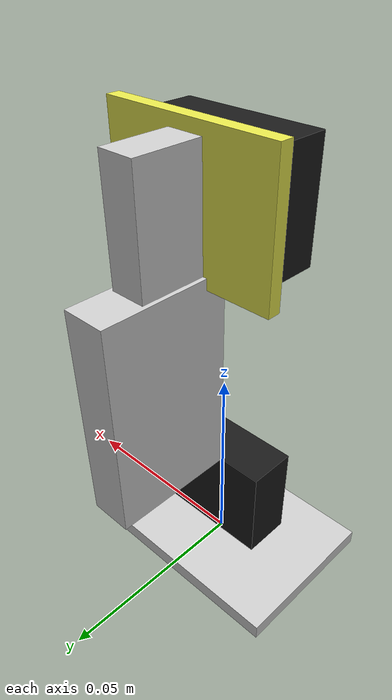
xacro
<?xml version="1.0"?>
<robot name="head_tracker_gimbal" xmlns:xacro="http://ros.org/wiki/xacro">

  <!-- ===== Basic dimensions (meters) ===== -->
  <xacro:property name="base_len"  value="0.060"/>   <!-- 6 cm -->
  <xacro:property name="base_wid"  value="0.040"/>   <!-- 4 cm -->
  <xacro:property name="base_thk"  value="0.004"/>   <!-- 4 mm -->

  <xacro:property name="servo_x"   value="0.032"/>
  <xacro:property name="servo_y"   value="0.012"/>
  <xacro:property name="servo_z"   value="0.025"/>

  <xacro:property name="col_x"     value="0.010"/>
  <xacro:property name="col_y"     value="0.030"/>
  <xacro:property name="col_z"     value="0.050"/>

  <xacro:property name="pservo_x"  value="${servo_x}"/>
  <xacro:property name="pservo_y"  value="${servo_y}"/>
  <xacro:property name="pservo_z"  value="${servo_z}"/>

  <!-- plate_x = width, plate_y = height, plate_z = thickness -->
  <xacro:property name="plate_x"   value="0.040"/>   <!-- 4 cm width -->
  <xacro:property name="plate_y"   value="0.030"/>   <!-- 3 cm height -->
  <xacro:property name="plate_z"   value="0.003"/>   <!-- 3 mm thick -->

  <!-- inertia helper -->
  <xacro:macro name="box_inertial" params="mass x y z">
    <inertial>
      <mass value="${mass}"/>
      <origin xyz="0 0 0" rpy="0 0 0"/>
      <inertia
        ixx="${mass*(y*y + z*z)/12.0}"
        iyy="${mass*(x*x + z*z)/12.0}"
        izz="${mass*(x*x + y*y)/12.0}"
        ixy="0.0" ixz="0.0" iyz="0.0"/>
    </inertial>
  </xacro:macro>

  <!-- materials -->
  <material name="aluminium_grey">
    <color rgba="0.8 0.8 0.8 1.0"/>
  </material>

  <material name="servo_black">
    <color rgba="0.1 0.1 0.1 1.0"/>
  </material>

  <material name="cam_yellow">
    <color rgba="0.9 0.9 0.3 1.0"/>
  </material>

  <!-- ========== LINKS ========== -->

  <!-- base -->
  <link name="base_link">
    <visual>
      <origin xyz="0 0 ${base_thk/2.0}" rpy="0 0 0"/>
      <geometry>
        <box size="${base_len} ${base_wid} ${base_thk}"/>
      </geometry>
      <material name="aluminium_grey"/>
    </visual>
    <collision>
      <origin xyz="0 0 ${base_thk/2.0}" rpy="0 0 0"/>
      <geometry>
        <box size="${base_len} ${base_wid} ${base_thk}"/>
      </geometry>
    </collision>
    <xacro:box_inertial mass="0.05" x="${base_len}" y="${base_wid}" z="${base_thk}"/>
  </link>

  <!-- yaw link (bottom servo + column) -->
  <link name="yaw_link">
    <visual>
      <origin xyz="0 0 ${servo_z/2.0 + base_thk}" rpy="0 0 0"/>
      <geometry>
        <box size="${servo_x} ${servo_y} ${servo_z}"/>
      </geometry>
      <material name="servo_black"/>
    </visual>

    <visual>
      <origin xyz="0 ${col_y/2.0 + servo_y/2.0} ${base_thk + servo_z + col_z/2.0}" rpy="0 0 0"/>
      <geometry>
        <box size="${col_x} ${col_y} ${col_z}"/>
      </geometry>
      <material name="aluminium_grey"/>
    </visual>

    <collision>
      <origin xyz="0 0 ${servo_z/2.0 + base_thk}" rpy="0 0 0"/>
      <geometry>
        <box size="${servo_x} ${servo_y} ${servo_z}"/>
      </geometry>
    </collision>
    <xacro:box_inertial mass="0.03" x="${servo_x}" y="${servo_y}" z="${servo_z}"/>
  </link>

  <!-- pitch link (upper servo + side bracket, above joint) -->
  <link name="pitch_link">
    <visual>
      <origin xyz="0 0 ${pservo_z/2.0}" rpy="0 0 0"/>
      <geometry>
        <box size="${pservo_x} ${pservo_y} ${pservo_z}"/>
      </geometry>
      <material name="servo_black"/>
    </visual>

    <visual>
      <origin xyz="0 ${pservo_y/2.0 + 0.010} ${pservo_z/2.0}" rpy="0 0 0"/>
      <geometry>
        <box size="0.008 0.020 ${pservo_z}"/>
      </geometry>
      <material name="aluminium_grey"/>
    </visual>

    <collision>
      <origin xyz="0 0 ${pservo_z/2.0}" rpy="0 0 0"/>
      <geometry>
        <box size="${pservo_x} ${pservo_y} ${pservo_z}"/>
      </geometry>
    </collision>
    <xacro:box_inertial mass="0.03" x="${pservo_x}" y="${pservo_y}" z="${pservo_z}"/>
  </link>

  <!-- camera plate: vertical side plate on front of pitch servo -->
  <link name="camera_plate">
    <visual>
      <origin
        xyz="0
             ${pservo_y/2.0 + plate_z/2.0 + 0.002}
             ${pservo_z/2.0}"
        rpy="0 0 0"/>
      <geometry>
        <!-- width  = plate_x, thickness = plate_z, height = plate_y -->
        <box size="${plate_x} ${plate_z} ${plate_y}"/>
      </geometry>
      <material name="cam_yellow"/>
    </visual>
    <collision>
      <origin
        xyz="0
             ${pservo_y/2.0 + plate_z/2.0 + 0.002}
             ${pservo_z/2.0}"
        rpy="0 0 0"/>
      <geometry>
        <box size="${plate_x} ${plate_z} ${plate_y}"/>
      </geometry>
    </collision>
    <xacro:box_inertial mass="0.01" x="${plate_x}" y="${plate_z}" z="${plate_y}"/>
  </link>

  <!-- ========== JOINTS ========== -->

  <!-- yaw: about Z at base -->
  <joint name="yaw_joint" type="revolute">
    <origin xyz="0 0 ${base_thk}" rpy="0 0 0"/>
    <parent link="base_link"/>
    <child  link="yaw_link"/>
    <axis xyz="0 0 1"/>
    <limit lower="-3.1416" upper="3.1416" effort="1.0" velocity="4.0"/>
  </joint>

  <!-- pitch: about X at top of column -->
  <joint name="pitch_joint" type="revolute">
    <origin xyz="0 0 ${base_thk + servo_z + col_z}" rpy="0 0 0"/>
    <parent link="yaw_link"/>
    <child  link="pitch_link"/>
    <axis xyz="1 0 0"/>
    <limit lower="-1.57" upper="1.57" effort="1.0" velocity="4.0"/>
  </joint>

  <!-- fixed camera plate -->
  <joint name="camera_fixed" type="fixed">
    <origin xyz="0 0 0" rpy="0 0 0"/>
    <parent link="pitch_link"/>
    <child  link="camera_plate"/>
  </joint>

</robot>
